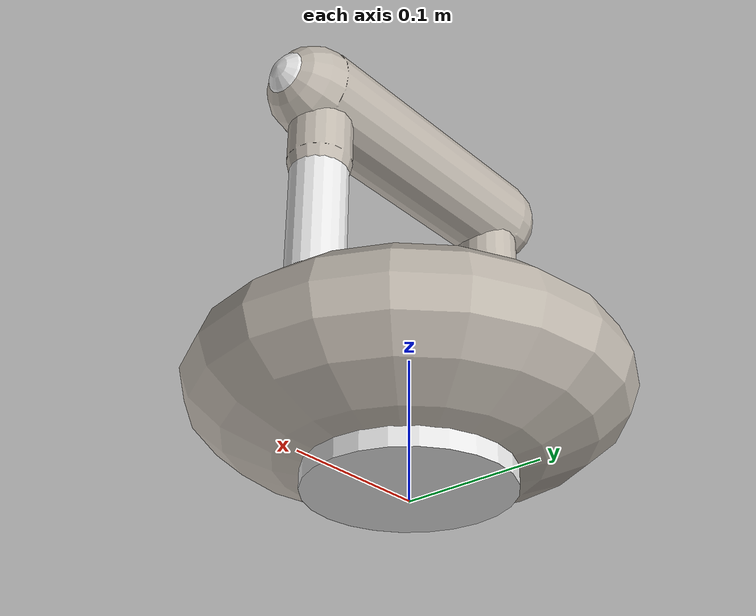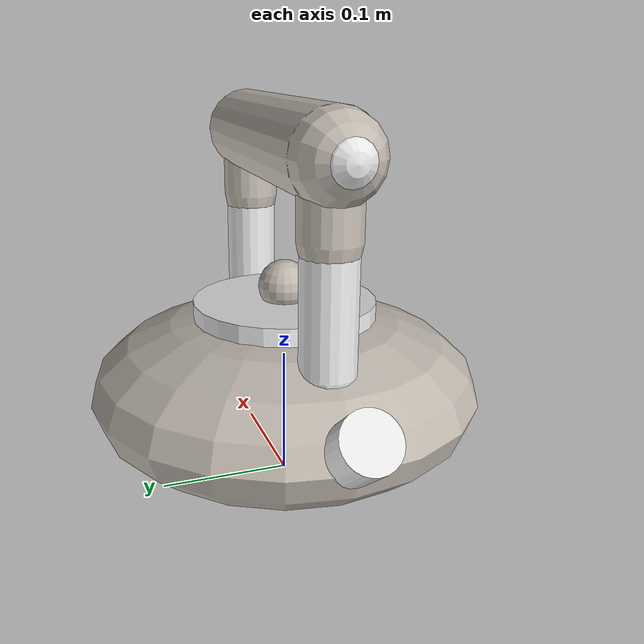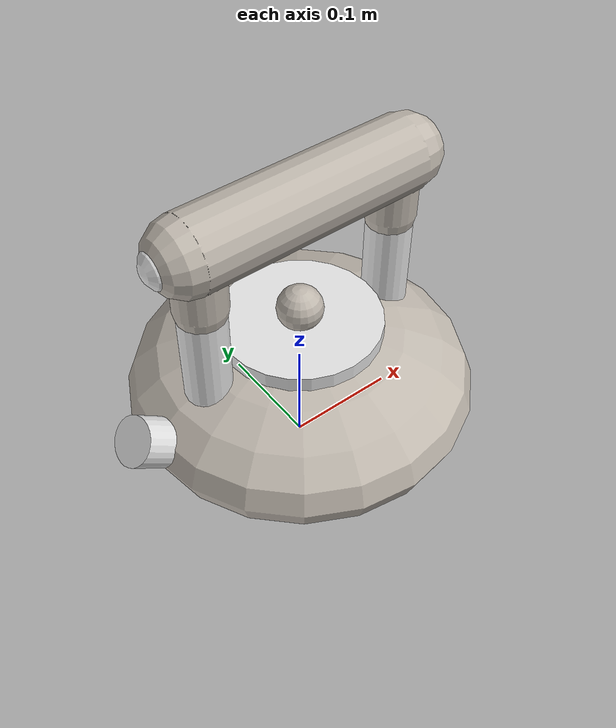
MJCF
<mujoco model="kettle">
    <compiler inertiafromgeom="auto" inertiagrouprange="1 4" angle="radian" />

    <asset>
        <mesh file="kettle/meshes/kettle.stl" name="kettle" />
        <mesh file="kettle/meshes/kettlehandle.stl" name="kettlehandle" />

        <texture name="T_kettle_metal" type="cube" height="1" width="1" file="common/textures/metal0.png" />
        <texture name="T_kettle_wood" type="cube" height="1" width="1" file="common/textures/wood1.png" />

        <material name="kettle_wood" rgba="1 1 1 1" texture="T_kettle_wood" texrepeat="3 3" reflectance="1" shininess="1" texuniform="false" />
        <material name="kettle_metal" rgba="1 1 1 1" texture="T_kettle_metal" texrepeat="3 3" reflectance="1" shininess="1" texuniform="false" />
        <material name="kettle_Rmetal" rgba="1 .1 .1 1" texture="T_kettle_metal" texrepeat="3 3" reflectance="1" shininess="1" texuniform="false" />
        <material name="kettle_Bmetal" rgba=".1 .1 1 1" texture="T_kettle_metal" texrepeat="3 3" reflectance="1" shininess="1" texuniform="false" />
        <material name="kettle_white" rgba=".9 .9 .9 1" reflectance="1" shininess="1" />
        <material name="kettle_collision_blue" rgba="0.3 0.3 1.0 0.5" shininess="0" specular="0" />
    </asset>

    <default>
        <default class="kettle">
            <joint damping="2" frictionloss="2" armature=".01" limited="true" />
            <geom conaffinity="0" contype="0" group="1" material="kettle_white" type="mesh" />
            <default class="kettle_collision">
                <geom conaffinity="1" condim="4" contype="1" group="4" margin="0.001" material="kettle_collision_blue" solimp=".8 .9 .01" solref=".02 1" type="mesh" />
            </default>
        </default>
    </default>

    <worldbody>
        <body name="kettleroot2" childclass="kettle" pos="0 0 0.006064596585929394">
            <geom material="kettle_metal" pos="0 0 0.070" size="0.15 0.15 0.065" type="ellipsoid" />
            <geom material="kettle_metal" euler="0 1.57 0" pos="0 0 0.259" size="0.032 0.1" type="capsule" />
            <geom material="kettle_white" euler="0 0 0" pos="0 0 0.07" size="0.07 .07" type="cylinder" />
            <geom material="kettle_metal" pos="0 0 0.150" size="0.02" type="sphere" />

            <geom euler="0 1.57 0" pos="0 0 0.259" size="0.02 0.115" type="capsule" />
            <geom pos="0.092 0 0.186" size="0.02 0.07" type="capsule" />
            <geom pos="-0.092 0 0.185" size="0.02 0.07" type="capsule" />
            <geom material="kettle_metal" pos="-0.092 0 0.22" size="0.022 0.015" type="capsule" />
            <geom material="kettle_metal" pos="0.092 0 0.22" size="0.022 0.015" type="capsule" />
            <geom euler="0 2.25 0" pos="-0.126 0 0.07" size="0.021 0.05" type="cylinder" />

            <geom class="kettle_collision" euler="0 1.57 0" pos="0 0 0.259" size="0.032 0.1" type="capsule" mass=".02" />
            <geom class="kettle_collision" pos="0.092 0 0.18" size="0.023 0.06" type="capsule" mass=".02" />
            <geom class="kettle_collision" pos="-0.092 0 0.18" size="0.023 0.06" type="capsule" mass=".02" />
            <geom class="kettle_collision" euler="0 2.25 0" pos="-0.126 0 0.07" size="0.021 0.05" type="cylinder" mass=".02" />
            <geom class="kettle_collision" pos="0 0 0.070" size="0.15 .15 0.065" type="ellipsoid" mass=".8" />
            <geom class="kettle_collision" euler="0 0 0" pos="0 0 0.07" size="0.07 .07" type="cylinder" mass=".2" />
            <site type="sphere" name="kettle_site2" pos="0 0 0.259" size=".01" group="3" rgba="1 0 0 1" />
        </body>
    </worldbody>

</mujoco>
